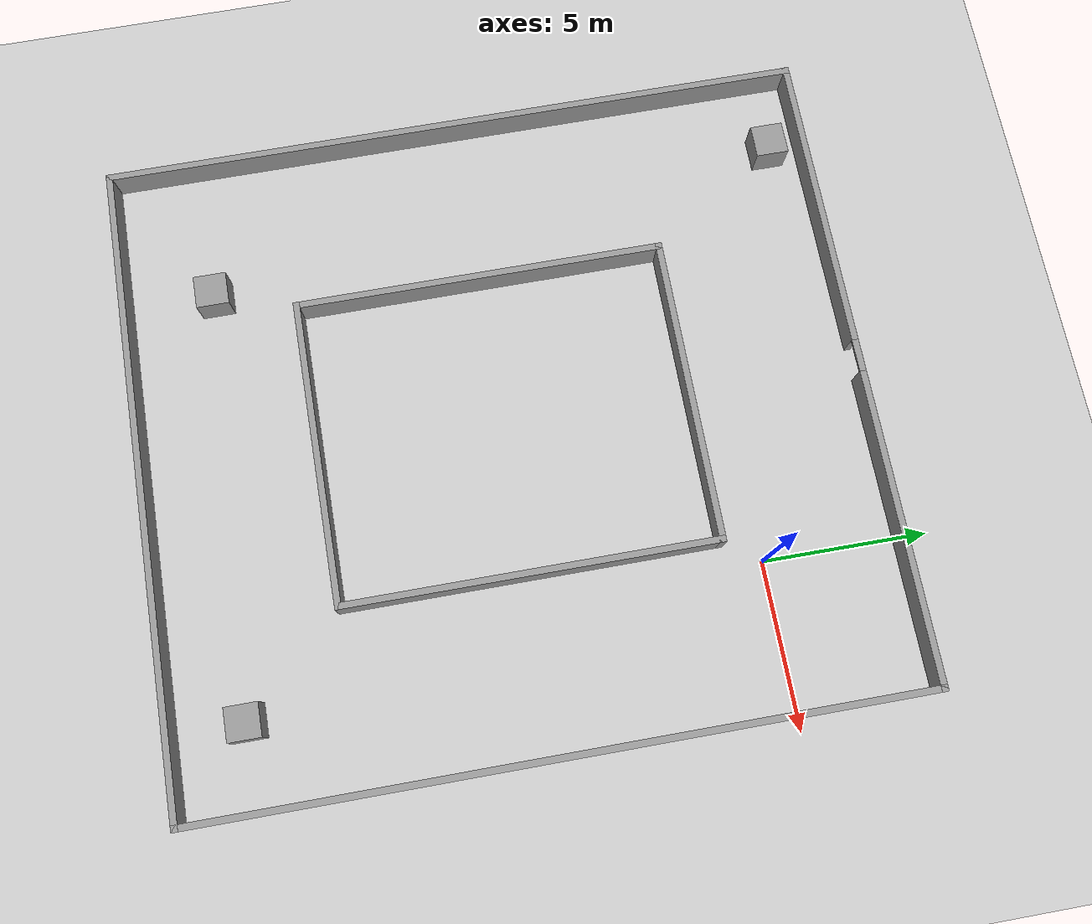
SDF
<sdf version="1.4">
 <world name="default">
  <light name="sun" type="directional">
   <pose>0 0 10 0 -0 0</pose>
   <diffuse>0.8 0.8 0.8 1</diffuse>
   <specular>0.2 0.2 0.2 1</specular>
   <attenuation>
    <range>1000</range>
    <constant>0.9</constant>
    <linear>0.01</linear>
    <quadratic>0.001</quadratic>
   </attenuation>
   <direction>-0.5 0.1 -0.9</direction>
  </light>
  <model name="ground_plane">
   <static>1</static>
   <link name="link">
    <collision name="collision">
     <geometry><plane><normal>0 0 1</normal><size>100 100</size></plane></geometry>
     <surface><friction><ode><mu>100</mu><mu2>50</mu2></ode></friction></surface>
    </collision>
    <visual name="visual">
     <cast_shadows>0</cast_shadows>
     <geometry><plane><normal>0 0 1</normal><size>100 100</size></plane></geometry>
     <material>
      <script><uri>file://media/materials/scripts/gazebo.material</uri><name>Gazebo/Grey</name></script>
     </material>
    </visual>
    <velocity_decay><linear>0</linear><angular>0</angular></velocity_decay>
   </link>
  </model>
  <physics type="ode">
   <max_step_size>0.001</max_step_size>
   <real_time_factor>1</real_time_factor>
   <real_time_update_rate>1000</real_time_update_rate>
   <gravity>0 0 -9.8</gravity>
  </physics>
  <scene><ambient>0.4 0.4 0.4 1</ambient><background>0.7 0.7 0.7 1</background><shadows>1</shadows></scene>
  <spherical_coordinates>
   <surface_model>EARTH_WGS84</surface_model>
   <latitude_deg>0</latitude_deg>
   <longitude_deg>0</longitude_deg>
   <elevation>0</elevation>
   <heading_deg>0</heading_deg>
  </spherical_coordinates>
  <model name="test_d">
   <link name="Wall_10">
    <pose>-5.398 4.066 0 0 -0 3.14159</pose>
    <visual name="Wall_10_Visual_0">
     <pose>-5.19051 0 0.5 0 -0 0</pose>
     <geometry><box><size>9.61898 0.2 1</size></box></geometry>
     <material>
      <script><uri>file://media/materials/scripts/gazebo.material</uri><name>Gazebo/Grey</name></script>
     </material>
    </visual>
    <collision name="Wall_10_Collision_0">
     <geometry><box><size>9.61898 0.2 1</size></box></geometry>
     <pose>-5.19051 0 0.5 0 -0 0</pose>
    </collision>
    <visual name="Wall_10_Visual_1">
     <pose>5.30949 0 0.5 0 -0 0</pose>
     <geometry><box><size>9.38102 0.2 1</size></box></geometry>
     <material>
      <script><uri>file://media/materials/scripts/gazebo.material</uri><name>Gazebo/Grey</name></script>
     </material>
    </visual>
    <collision name="Wall_10_Collision_1">
     <geometry><box><size>9.38102 0.2 1</size></box></geometry>
     <pose>5.30949 0 0.5 0 -0 0</pose>
    </collision>
    <visual name="Wall_10_Visual_2">
     <pose>0.11898 0 0.95 0 -0 0</pose>
     <geometry><box><size>1 0.2 0.1</size></box></geometry>
     <material>
      <script><uri>file://media/materials/scripts/gazebo.material</uri><name>Gazebo/Grey</name></script>
     </material>
    </visual>
    <collision name="Wall_10_Collision_2">
     <geometry><box><size>1 0.2 0.1</size></box></geometry>
     <pose>0.11898 0 0.95 0 -0 0</pose>
    </collision>
    <velocity_decay><linear>0</linear><angular>0</angular></velocity_decay>
   </link>
   <link name="Wall_12">
    <collision name="Wall_12_Collision">
     <geometry><box><size>11.5 0.2 1</size></box></geometry>
     <pose>0 0 0.5 0 -0 0</pose>
    </collision>
    <visual name="Wall_12_Visual">
     <pose>0 0 0.5 0 -0 0</pose>
     <geometry><box><size>11.5 0.2 1</size></box></geometry>
     <material>
      <script><uri>file://media/materials/scripts/gazebo.material</uri><name>Gazebo/Grey</name></script>
     </material>
    </visual>
    <velocity_decay><linear>0</linear><angular>0</angular></velocity_decay>
    <pose>-0.744 -6.834 0 0 -0 1.5708</pose>
   </link>
   <link name="Wall_13">
    <collision name="Wall_13_Collision">
     <geometry><box><size>9.5 0.2 1</size></box></geometry>
     <pose>0 0 0.5 0 -0 0</pose>
    </collision>
    <visual name="Wall_13_Visual">
     <pose>0 0 0.5 0 -0 0</pose>
     <geometry><box><size>9.5 0.2 1</size></box></geometry>
     <material>
      <script><uri>file://media/materials/scripts/gazebo.material</uri><name>Gazebo/Grey</name></script>
     </material>
    </visual>
    <velocity_decay><linear>0</linear><angular>0</angular></velocity_decay>
    <pose>-5.394 -1.184 0 0 -0 3.14159</pose>
   </link>
   <link name="Wall_14">
    <collision name="Wall_14_Collision">
     <geometry><box><size>11.5 0.2 1</size></box></geometry>
     <pose>0 0 0.5 0 -0 0</pose>
    </collision>
    <visual name="Wall_14_Visual">
     <pose>0 0 0.5 0 -0 0</pose>
     <geometry><box><size>11.5 0.2 1</size></box></geometry>
     <material>
      <script><uri>file://media/materials/scripts/gazebo.material</uri><name>Gazebo/Grey</name></script>
     </material>
    </visual>
    <velocity_decay><linear>0</linear><angular>0</angular></velocity_decay>
    <pose>-10.044 -6.834 0 0 0 -1.5708</pose>
   </link>
   <link name="Wall_15">
    <collision name="Wall_15_Collision">
     <geometry><box><size>9.5 0.2 1</size></box></geometry>
     <pose>0 0 0.5 0 -0 0</pose>
    </collision>
    <visual name="Wall_15_Visual">
     <pose>0 0 0.5 0 -0 0</pose>
     <geometry><box><size>9.5 0.2 1</size></box></geometry>
     <material>
      <script><uri>file://media/materials/scripts/gazebo.material</uri><name>Gazebo/Grey</name></script>
     </material>
    </visual>
    <velocity_decay><linear>0</linear><angular>0</angular></velocity_decay>
    <pose>-5.394 -12.484 0 0 -0 0</pose>
   </link>
   <link name="Wall_7">
    <collision name="Wall_7_Collision">
     <geometry><box><size>22 0.2 1</size></box></geometry>
     <pose>0 0 0.5 0 -0 0</pose>
    </collision>
    <visual name="Wall_7_Visual">
     <pose>0 0 0.5 0 -0 0</pose>
     <geometry><box><size>22 0.2 1</size></box></geometry>
     <material>
      <script><uri>file://media/materials/scripts/gazebo.material</uri><name>Gazebo/Grey</name></script>
     </material>
    </visual>
    <velocity_decay><linear>0</linear><angular>0</angular></velocity_decay>
    <pose>-15.294 -6.834 0 0 0 -1.5708</pose>
   </link>
   <link name="Wall_8">
    <collision name="Wall_8_Collision">
     <geometry><box><size>20 0.2 1</size></box></geometry>
     <pose>0 0 0.5 0 -0 0</pose>
    </collision>
    <visual name="Wall_8_Visual">
     <pose>0 0 0.5 0 -0 0</pose>
     <geometry><box><size>20 0.2 1</size></box></geometry>
     <material>
      <script><uri>file://media/materials/scripts/gazebo.material</uri><name>Gazebo/Grey</name></script>
     </material>
    </visual>
    <velocity_decay><linear>0</linear><angular>0</angular></velocity_decay>
    <pose>-5.394 -17.734 0 0 -0 0</pose>
   </link>
   <link name="Wall_9">
    <collision name="Wall_9_Collision">
     <geometry><box><size>22 0.2 1</size></box></geometry>
     <pose>0 0 0.5 0 -0 0</pose>
    </collision>
    <visual name="Wall_9_Visual">
     <pose>0 0 0.5 0 -0 0</pose>
     <geometry><box><size>22 0.2 1</size></box></geometry>
     <material>
      <script><uri>file://media/materials/scripts/gazebo.material</uri><name>Gazebo/Grey</name></script>
     </material>
    </visual>
    <velocity_decay><linear>0</linear><angular>0</angular></velocity_decay>
    <pose>4.504 -6.834 0 0 -0 1.57098</pose>
   </link>
   <static>1</static>
  </model>
  <model name="unit_box_1">
   <pose>2 -15.555 0.5 0 -0 0</pose>
   <link name="link">
    <inertial>
     <mass>1</mass>
     <inertia><ixx>1</ixx><ixy>0</ixy><ixz>0</ixz><iyy>1</iyy><iyz>0</iyz><izz>1</izz></inertia>
    </inertial>
    <collision name="collision"><geometry><box><size>1 1 1</size></box></geometry></collision>
    <visual name="visual">
     <geometry><box><size>1 1 1</size></box></geometry>
     <material>
      <script><uri>file://media/materials/scripts/gazebo.material</uri><name>Gazebo/Grey</name></script>
     </material>
    </visual>
    <velocity_decay><linear>0</linear><angular>0</angular></velocity_decay>
   </link>
   <static>0</static>
  </model>
  <model name="unit_box_3">
   <pose>-13 3 0.5 0 -0 0</pose>
   <link name="link">
    <inertial>
     <mass>1</mass>
     <inertia><ixx>1</ixx><ixy>0</ixy><ixz>0</ixz><iyy>1</iyy><iyz>0</iyz><izz>1</izz></inertia>
    </inertial>
    <collision name="collision"><geometry><box><size>1 1 1</size></box></geometry></collision>
    <visual name="visual">
     <geometry><box><size>1 1 1</size></box></geometry>
     <material>
      <script><uri>file://media/materials/scripts/gazebo.material</uri><name>Gazebo/Grey</name></script>
     </material>
    </visual>
    <velocity_decay><linear>0</linear><angular>0</angular></velocity_decay>
   </link>
   <static>0</static>
  </model>
  <model name="unit_box_4">
   <pose>-11 -15 0.5 0 -0 0</pose>
   <link name="link">
    <inertial>
     <mass>1</mass>
     <inertia><ixx>1</ixx><ixy>0</ixy><ixz>0</ixz><iyy>1</iyy><iyz>0</iyz><izz>1</izz></inertia>
    </inertial>
    <collision name="collision"><geometry><box><size>1 1 1</size></box></geometry></collision>
    <visual name="visual">
     <geometry><box><size>1 1 1</size></box></geometry>
     <material>
      <script><uri>file://media/materials/scripts/gazebo.material</uri><name>Gazebo/Grey</name></script>
     </material>
    </visual>
    <velocity_decay><linear>0</linear><angular>0</angular></velocity_decay>
   </link>
   <static>0</static>
  </model>
 </world>
</sdf>
